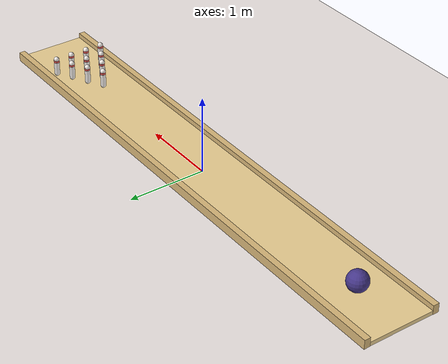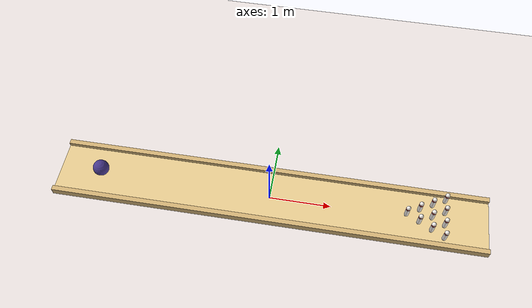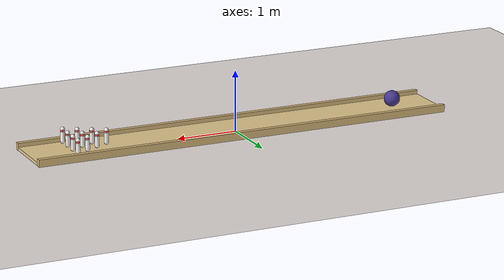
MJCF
<mujoco model="bowling_scene">
  <compiler angle="radian" coordinate="local" autolimits="true"/>
  <option timestep="0.002" gravity="0 0 -9.81" integrator="implicitfast"
          impratio="3" cone="elliptic"/>

  <visual>
    <headlight diffuse="0 0 0" ambient="0.50 0.48 0.55" specular="0 0 0"/>
    <rgba haze="0.94 0.91 0.90 1"/>
    <global azimuth="120" elevation="-15" offwidth="1920" offheight="1080" fovy="35"/>
    <quality shadowsize="8192" offsamples="8"/>
    <map shadowclip="6" shadowscale="0.7"/>
  </visual>

  <asset>
    <!-- Flat purple sky, clean horizon (same recipe as the pendulum) -->
    <texture type="skybox" builtin="flat"
             rgb1="0.74 0.68 0.86" rgb2="0.74 0.68 0.86"
             width="512" height="512"
             mark="none" markrgb="0 0 0"/>

    <material name="floor_mat" rgba="0.94 0.91 0.90 1"
              reflectance="0.0" specular="0.0" shininess="0.0"/>
    <material name="lane_wood" rgba="0.93 0.82 0.58 1"
              specular="0.1" shininess="0.1"/>
    <material name="rail_wood" rgba="0.85 0.72 0.48 1"
              specular="0.1" shininess="0.1"/>
    <material name="pin_white" rgba="0.96 0.94 0.92 1"
              specular="0.25" shininess="0.3"/>
    <material name="pin_red" rgba="0.88 0.32 0.30 1"
              specular="0.15" shininess="0.2"/>
    <material name="ball_blue" rgba="0.28 0.22 0.55 1"
              specular="0.45" shininess="0.6"/>
  </asset>

  <default>
    <!-- Generous friction so pins resist tipping until hit, and ball rolls -->
    <geom friction="0.8 0.05 0.001" solref="0.005 1" solimp="0.95 0.99 0.001"/>
  </default>

  <worldbody>
    <!-- Lights -->
    <light pos="0 0 12" dir="-0.30 0.55 -1" directional="true" castshadow="true"
           diffuse="0.85 0.82 0.78" specular="0.15 0.15 0.15"/>
    <light pos="0 0 8" dir="0.40 -0.30 -1" directional="true" castshadow="false"
           diffuse="0.28 0.28 0.34" specular="0 0 0"/>

    <!-- Floor -->
    <geom name="floor" type="plane" size="40 40 0.1" material="floor_mat"/>

    <!-- Bowling lane: thin wooden plank elevated above the floor -->
    <geom name="lane" type="box" size="3.5 0.42 0.025"
          pos="0 0 0.05" material="lane_wood"/>
    <!-- Lane side rails (gutters) -->
    <geom name="rail_left"  type="box" size="3.5 0.04 0.06"
          pos="0 -0.46 0.08" material="rail_wood"/>
    <geom name="rail_right" type="box" size="3.5 0.04 0.06"
          pos="0  0.46 0.08" material="rail_wood"/>

    <!-- Bowling ball, free body, starts at far end of lane -->
    <body name="ball" pos="-2.8 0 0.20">
      <joint name="ball_free" type="free"/>
      <geom name="ball_geom" type="sphere" size="0.13" mass="6"
            material="ball_blue"/>
    </body>

    <!-- 10 pins in standard triangle formation.
         Each pin = thin capsule, center z = lane_top + half_capsule_length -->
    <!-- lane top z = 0.075, capsule radius 0.035 + half-len 0.10 → center z = 0.075 + 0.10 + 0.035 = 0.21 -->
    <!-- Row 1: head pin -->
    <body name="pin1" pos="2.2 0 0.21">
      <joint type="free"/>
      <geom type="capsule" size="0.035 0.10" material="pin_white" mass="0.45"/>
      <geom type="capsule" size="0.0355 0.012" pos="0 0 0.075" material="pin_red" mass="0.001"/>
    </body>
    <!-- Row 2 -->
    <body name="pin2" pos="2.4 -0.11 0.21">
      <joint type="free"/>
      <geom type="capsule" size="0.035 0.10" material="pin_white" mass="0.45"/>
      <geom type="capsule" size="0.0355 0.012" pos="0 0 0.075" material="pin_red" mass="0.001"/>
    </body>
    <body name="pin3" pos="2.4 0.11 0.21">
      <joint type="free"/>
      <geom type="capsule" size="0.035 0.10" material="pin_white" mass="0.45"/>
      <geom type="capsule" size="0.0355 0.012" pos="0 0 0.075" material="pin_red" mass="0.001"/>
    </body>
    <!-- Row 3 -->
    <body name="pin4" pos="2.6 -0.22 0.21">
      <joint type="free"/>
      <geom type="capsule" size="0.035 0.10" material="pin_white" mass="0.45"/>
      <geom type="capsule" size="0.0355 0.012" pos="0 0 0.075" material="pin_red" mass="0.001"/>
    </body>
    <body name="pin5" pos="2.6 0 0.21">
      <joint type="free"/>
      <geom type="capsule" size="0.035 0.10" material="pin_white" mass="0.45"/>
      <geom type="capsule" size="0.0355 0.012" pos="0 0 0.075" material="pin_red" mass="0.001"/>
    </body>
    <body name="pin6" pos="2.6 0.22 0.21">
      <joint type="free"/>
      <geom type="capsule" size="0.035 0.10" material="pin_white" mass="0.45"/>
      <geom type="capsule" size="0.0355 0.012" pos="0 0 0.075" material="pin_red" mass="0.001"/>
    </body>
    <!-- Row 4 -->
    <body name="pin7" pos="2.8 -0.33 0.21">
      <joint type="free"/>
      <geom type="capsule" size="0.035 0.10" material="pin_white" mass="0.45"/>
      <geom type="capsule" size="0.0355 0.012" pos="0 0 0.075" material="pin_red" mass="0.001"/>
    </body>
    <body name="pin8" pos="2.8 -0.11 0.21">
      <joint type="free"/>
      <geom type="capsule" size="0.035 0.10" material="pin_white" mass="0.45"/>
      <geom type="capsule" size="0.0355 0.012" pos="0 0 0.075" material="pin_red" mass="0.001"/>
    </body>
    <body name="pin9" pos="2.8 0.11 0.21">
      <joint type="free"/>
      <geom type="capsule" size="0.035 0.10" material="pin_white" mass="0.45"/>
      <geom type="capsule" size="0.0355 0.012" pos="0 0 0.075" material="pin_red" mass="0.001"/>
    </body>
    <body name="pin10" pos="2.8 0.33 0.21">
      <joint type="free"/>
      <geom type="capsule" size="0.035 0.10" material="pin_white" mass="0.45"/>
      <geom type="capsule" size="0.0355 0.012" pos="0 0 0.075" material="pin_red" mass="0.001"/>
    </body>

    <!-- Camera: tight on the pin area, elevated 3/4 view from front-left.
         Looking toward target ~(2.5, 0, 0.15) from (1.2, -1.5, 1.0). -->
    <camera name="cam" pos="1.2 -1.5 1.0" fovy="38"
            xyaxes="0.76 -0.65 0   0.27 0.32 0.91"/>
  </worldbody>
</mujoco>
